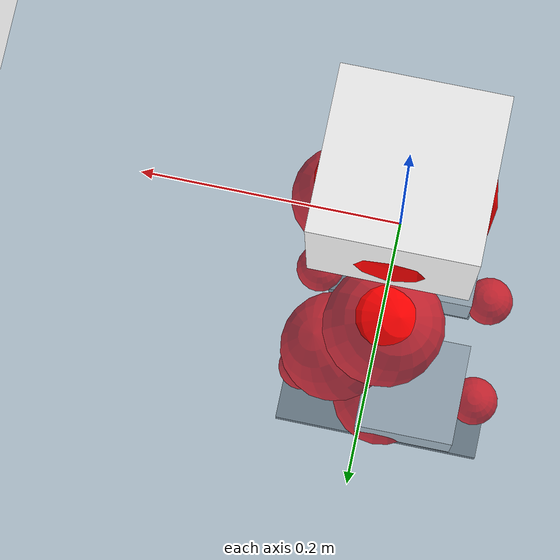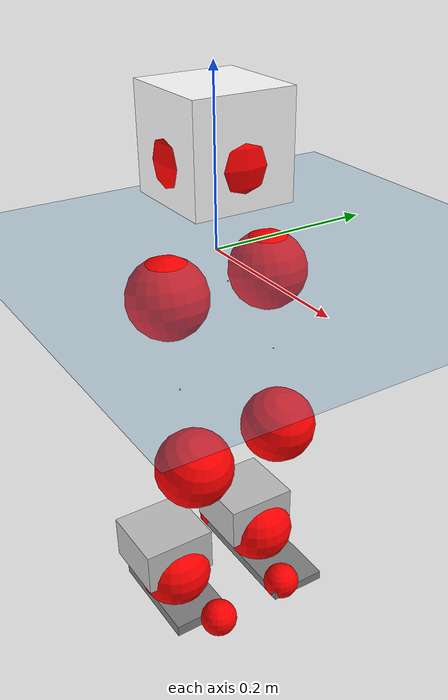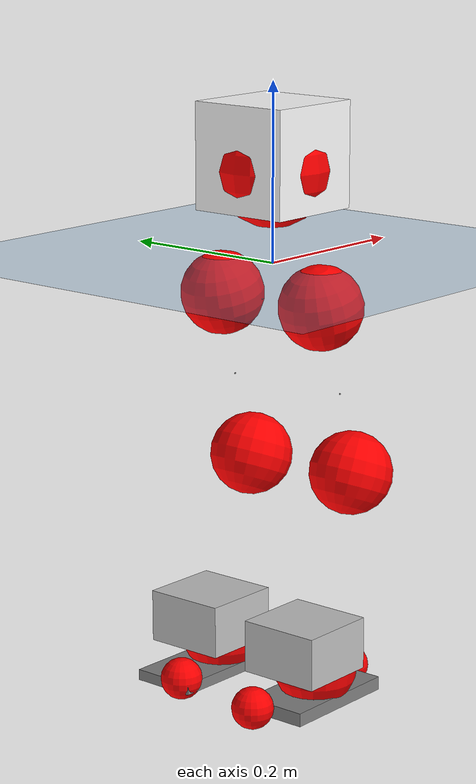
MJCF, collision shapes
<mujoco model="pi_12dof_release_v1">
  <compiler angle="radian" assetdir="assets" balanceinertia="true" inertiafromgeom="false"/>

  <option timestep="0.005" density="1.2" viscosity="2e-05"/>

  <size nkey="1"/>

  <visual>
    <quality shadowsize="8192"/>
    <map shadowclip="0.5"/>
  </visual>

  <default>
    <default class="/">
      <joint armature="0.01" damping="0.01" frictionloss="0.01"/>
      <geom contype="0" conaffinity="0" group="1" solref="-1000 -80"/>
      <site size="0.01 0.005 0.005" group="5"/>
      <general forcelimited="true" biastype="affine" gainprm="20" biasprm="0 -20 -0.5"/>
      <default class="foot">
        <geom size="0.0845 0.036 0.005" type="box" condim="6" group="4" priority="1" friction="0.9 0.2 0.2" solimp="0.015 1 0.005"/>
      </default>
      <default class="reward_collision_sphere">
        <geom group="5" rgba="1 0 0 1"/>
      </default>
    </default>
  </default>

  <asset>
    <texture type="skybox" colorspace="auto" name="//unnamed_texture_0" builtin="gradient" rgb1="0.95 0.95 0.95" rgb2="0.95 0.95 0.95" width="100" height="600"/>
    <texture type="2d" colorspace="auto" name="texplane" builtin="checker" rgb1="0.345 0.575 0.748" rgb2="0.345 0.575 0.748" markrgb="1 1 1" width="512" height="512"/>
    <material name="MatPlane" class="/" texture="texplane" texuniform="true" texrepeat="2 2" specular="0.9"/>
    <mesh name="baselink_1" class="/" file="baselink_1.STL"/>
    <mesh name="r_hip_pitch_link" class="/" file="r_hip_pitch_link.STL"/>
    <mesh name="r_hip_roll_link" class="/" file="r_hip_roll_link.STL"/>
    <mesh name="r_thigh_link" class="/" file="r_thigh_link.STL"/>
    <mesh name="r_calf_link" class="/" file="r_calf_link.STL"/>
    <mesh name="r_ankle_pitch_link" class="/" file="r_ankle_pitch_link.STL"/>
    <mesh name="r_ankle_roll_link" class="/" file="r_ankle_roll_link.STL"/>
    <mesh name="l_hip_pitch_link" class="/" file="l_hip_pitch_link.STL"/>
    <mesh name="l_hip_roll_link" class="/" file="l_hip_roll_link.STL"/>
    <mesh name="l_thigh_link" class="/" file="l_thigh_link.STL"/>
    <mesh name="l_calf_link" class="/" file="l_calf_link.STL"/>
    <mesh name="l_ankle_pitch_link" class="/" file="l_ankle_pitch_link.STL"/>
    <mesh name="l_ankle_roll_link" class="/" file="l_ankle_roll_link.STL"/>
  </asset>

  <worldbody>
    <geom name="floor" class="/" size="100 100 0.125" type="plane" group="0" material="MatPlane"/>
    <light name="toplight_shadow" class="/" pos="0 0 5" dir="0.0990148 0.0990148 -0.990148" type="directional" ambient="0.04 0.04 0.04" diffuse="0.55 0.55 0.55" specular="0.12 0.12 0.12"/>
    <light name="toplight_fill" class="/" pos="0 0 5" dir="0.0990148 0.0990148 -0.990148" type="directional" castshadow="false" ambient="0.04 0.04 0.04" diffuse="0.3 0.3 0.3" specular="0.08 0.08 0.08"/>
    <body name="trunk" pos="-0.000511329 0.000154841 0.00526729" quat="1 0.000219651 0.000161446 0.000863716">
      <inertial pos="0.00500035 -0.00898992 0.0512434" quat="0.695039 0.0100483 0.00895243 0.718846" mass="3.76972" diaginertia="0.0297582 0.00474315 0.0248617"/>
      <joint name="//unnamed_joint_0" type="free"/>
      <geom name="//unnamed_geom_1" class="/" type="mesh" density="0" rgba="1 1 1 1" mesh="baselink_1"/>
      <geom name="//unnamed_geom_2" class="/" size="0.0594028 0.0594028 0.0594028" pos="0 0 0.114202" type="box" rgba="1 1 1 1"/>
      <geom name="//unnamed_geom_3" class="reward_collision_sphere" size="0.0653431" pos="0 0 0.0999268"/>
      <site name="imu" class="/" pos="-0.0049412 0.0166438 -0.00661717" size="0.0118806"/>
      <camera name="track" class="/" pos="0 -1.74011 0" quat="0.707107 0.707107 0 0" mode="trackcom"/>
      <camera name="ego_camera" class="/" pos="0.094994 0 0.256955" quat="-0.5 -0.5 0.5 0.5"/>
      <body name="r_hip_pitch_link" pos="0.000179867 -0.0159152 -0.0456307" quat="0.992199 -1.54642e-05 -0.124665 1.95608e-05">
        <inertial pos="0.00851654 -0.0510988 0.00260653" quat="-0.0185913 0.708227 -0.0223699 0.705385" mass="0.623065" diaginertia="0.000354246 5.10156e-05 0.000472467"/>
        <joint name="r_hip_pitch_joint" class="/" pos="0 0 0" axis="-0.0419909 -0.998975 0.0169148" range="-1.77082 1.34628" armature="0.0139645" damping="0.0259696" frictionloss="0.0153361"/>
        <geom name="//unnamed_geom_4" class="/" type="mesh" density="0" rgba="0.75294 0.75294 0.75294 1" mesh="r_hip_pitch_link"/>
        <geom name="//unnamed_geom_5" class="/" size="0.000594028 0.000594028 0.000594028" type="box" rgba="0.75294 0.75294 0.75294 1"/>
        <body name="r_hip_roll_link" pos="0.00285995 -0.0499429 -0.00230943" quat="1 0.00012684 5.76244e-05 -6.16509e-05">
          <inertial pos="-0.00215323 -0.00254309 -0.0835176" quat="0.703519 -0.078812 -0.0741017 0.702395" mass="0.716824" diaginertia="0.00106582 0.000140455 0.00093759"/>
          <joint name="r_hip_roll_joint" class="/" pos="0 0 0" axis="-0.999558 -0.0126502 0.0269171" stiffness="0.0115633" range="-0.119428 0.460242" armature="0.011147" damping="0.0636748" frictionloss="0.00977357"/>
          <geom name="//unnamed_geom_6" class="/" type="mesh" density="0" rgba="0.75294 0.75294 0.75294 1" mesh="r_hip_roll_link"/>
          <geom name="//unnamed_geom_7" class="/" size="0.000594028 0.000594028 0.000594028" type="box" rgba="0.75294 0.75294 0.75294 1"/>
          <geom name="//unnamed_geom_8" class="reward_collision_sphere" size="0.0475223"/>
          <body name="r_thigh_link" pos="0.00210591 -0.00498806 -0.104962" quat="0.999991 0.00219396 -0.00311061 -0.00181663">
            <inertial pos="-0.00112907 0.000849709 -0.0697665" quat="0.737767 0.675051 -0.00246371 -0.000229093" mass="0.205529" diaginertia="0.000403814 4.90368e-05 0.000376548"/>
            <joint name="r_thigh_joint" class="/" pos="0 0 0" axis="-0.00193089 -0.00239759 -0.999995" range="-0.304135 0.698192" armature="0.00778186" damping="0.00277151" frictionloss="0.012751"/>
            <geom name="//unnamed_geom_9" class="/" type="mesh" density="0" rgba="0.75294 0.75294 0.75294 1" mesh="r_thigh_link"/>
            <geom name="//unnamed_geom_10" class="/" size="0.000594028 0.000594028 0.000594028" type="box" rgba="0.75294 0.75294 0.75294 1"/>
            <body name="r_calf_link" pos="-0.0012677 0.00138294 -0.0990297" quat="0.947497 -0.00236739 0.319749 0.00231743">
              <inertial pos="-0.00273754 0.000373934 -0.100704" quat="0.99998 -0.00384022 0.00421347 0.00284264" mass="1.49115" diaginertia="0.012322 0.00198357 0.00102279"/>
              <joint name="r_calf_joint" class="/" pos="0 0 0" axis="0.0489312 -0.998701 -0.0142169" range="-1.60991 0.645944" armature="0.0120501" damping="0.0128491" frictionloss="0.0120379"/>
              <geom name="//unnamed_geom_11" class="/" type="mesh" density="0" rgba="0.75294 0.75294 0.75294 1" mesh="r_calf_link"/>
              <geom name="//unnamed_geom_12" class="/" size="0.000594028 0.000594028 0.000594028" type="box" rgba="0.75294 0.75294 0.75294 1"/>
              <geom name="//unnamed_geom_13" class="reward_collision_sphere" size="0.0475223"/>
              <body name="r_ankle_pitch_link" pos="-0.00993551 -0.00345403 -0.19874" quat="0.980062 -0.00015928 -0.198694 0.000153016">
                <inertial pos="0.00708672 0.00166834 5.80226e-05" quat="0.00344552 0.709073 -0.00427209 0.705114" mass="0.266469" diaginertia="0.000968634 9.89992e-05 0.000626654"/>
                <joint name="r_ankle_pitch_joint" class="/" pos="0 0 0" axis="0.00964923 -0.999921 0.00806206" stiffness="0.0115401" range="-1.2091 0.459705" armature="0.0114807" damping="0" frictionloss="0.00763747"/>
                <geom name="//unnamed_geom_14" class="/" type="mesh" density="0" rgba="0.75294 0.75294 0.75294 1" mesh="r_ankle_pitch_link"/>
                <geom name="//unnamed_geom_15" class="/" size="0.0463342 0.0475223 0.0297014" type="box" rgba="0.75294 0.75294 0.75294 1"/>
                <body name="r_ankle_roll_link" pos="0.086446 0.00311244 -0.00335525" quat="1 -0.000395158 -3.2063e-05 6.37971e-05">
                  <inertial pos="-0.0286298 -0.000250828 -0.0302665" quat="0.5599 0.43207 0.433651 0.558367" mass="0.993814" diaginertia="0.00354166 0.000506939 0.00165605"/>
                  <joint name="r_ankle_roll_joint" class="/" pos="0 0 0" axis="-0.999952 0.00559924 0.00809942" range="-0.119506 0.130394" armature="0.0117213" damping="0.00484011" frictionloss="0.00592288"/>
                  <geom name="//unnamed_geom_16" class="/" type="mesh" density="0" rgba="0.75294 0.75294 0.75294 1" mesh="r_ankle_roll_link"/>
                  <geom name="//unnamed_geom_17" class="/" type="mesh" rgba="0.75294 0.75294 0.75294 1" mesh="r_ankle_roll_link"/>
                  <geom name="right_foot" class="foot" size="0.0712873 0.0370315 0.00766229" pos="-0.0645959 0 -0.0628112"/>
                  <geom name="//unnamed_geom_19" class="reward_collision_sphere" size="0.0475223" pos="-0.0633294 0 -0.0285505"/>
                  <geom name="//unnamed_geom_20" class="reward_collision_sphere" size="0.0237611" pos="0.0189988 0.0174011 -0.057101"/>
                  <geom name="//unnamed_geom_21" class="reward_collision_sphere" size="0.0237611" pos="-0.15199 0.0174011 -0.057101"/>
                  <site name="right_foot" class="foot" pos="-0.0645959 0 -0.0628112" size="0.0118806"/>
                </body>
              </body>
            </body>
          </body>
        </body>
      </body>
      <body name="l_hip_pitch_link" pos="-6.95116e-06 0.0145568 -0.0476776" quat="0.992215 0.000106311 -0.124531 0.000723325">
        <inertial pos="0.00376295 0.0544389 0.000782802" quat="0.0137997 0.695135 0.0261618 0.718271" mass="0.742529" diaginertia="0.000414809 4.95669e-05 0.000614844"/>
        <joint name="l_hip_pitch_joint" class="/" pos="0 0 0" axis="-0.00778916 0.999879 0.0134866" range="-1.37357 1.91746" armature="0.00934336" damping="0" frictionloss="0.0160004"/>
        <geom name="//unnamed_geom_22" class="/" type="mesh" density="0" rgba="0.75294 0.75294 0.75294 1" mesh="l_hip_pitch_link"/>
        <geom name="//unnamed_geom_23" class="/" size="0.000594028 0.000594028 0.000594028" type="box" rgba="0.75294 0.75294 0.75294 1"/>
        <body name="l_hip_roll_link" pos="-0.001818 0.0566947 0.000890665" quat="0.999999 0.0004454 -0.000917477 -0.00105184">
          <inertial pos="-0.00184046 0.00524878 -0.0874146" quat="0.699375 -0.0679089 -0.0792949 0.70709" mass="0.629185" diaginertia="0.000957209 0.000128753 0.000657263"/>
          <joint name="l_hip_roll_joint" class="/" pos="0 0 0" axis="-0.999938 -0.00428151 0.0102581" stiffness="0.00444547" range="-0.706471 0.289544" armature="0.0116629" damping="0" frictionloss="0.0129183"/>
          <geom name="//unnamed_geom_24" class="/" type="mesh" density="0" rgba="0.75294 0.75294 0.75294 1" mesh="l_hip_roll_link"/>
          <geom name="//unnamed_geom_25" class="/" size="0.000594028 0.000594028 0.000594028" type="box" rgba="0.75294 0.75294 0.75294 1"/>
          <geom name="//unnamed_geom_26" class="reward_collision_sphere" size="0.0475223"/>
          <body name="l_thigh_link" pos="-0.00602285 -0.00246682 -0.0984915" quat="0.999994 -0.000962468 0.0026594 -0.00186394">
            <inertial pos="-0.00615008 -0.000272186 -0.0628984" quat="0.674831 0.737971 -8.92588e-06 -0.00137496" mass="0.178918" diaginertia="0.00035417 3.65385e-05 0.000255998"/>
            <joint name="l_thigh_joint" class="/" pos="0 0 0" axis="0.000110942 0.000115624 -1" stiffness="0.00532101" range="-0.603566 0.439427" armature="0.0132248" damping="0" frictionloss="0.0150299"/>
            <geom name="//unnamed_geom_27" class="/" type="mesh" density="0" rgba="0.75294 0.75294 0.75294 1" mesh="l_thigh_link"/>
            <geom name="//unnamed_geom_28" class="/" size="0.000594028 0.000594028 0.000594028" type="box" rgba="0.75294 0.75294 0.75294 1"/>
            <body name="l_calf_link" pos="-0.0031843 -0.00605549 -0.099886" quat="0.948119 -0.00267203 0.317896 0.0020986">
              <inertial pos="0.000998149 0.000551862 -0.097294" quat="0.998549 -0.015984 0.0284783 0.0428228" mass="1.44382" diaginertia="0.0114992 0.00190679 0.00110008"/>
              <joint name="l_calf_joint" class="/" pos="0 0 0" axis="0.0129614 0.999909 -0.00375562" range="-0.642474 1.70381" armature="0.0109185" damping="0.00915981" frictionloss="0.0144759"/>
              <geom name="//unnamed_geom_29" class="/" type="mesh" density="0" rgba="0.75294 0.75294 0.75294 1" mesh="l_calf_link"/>
              <geom name="//unnamed_geom_30" class="/" size="0.000594028 0.000594028 0.000594028" type="box" rgba="0.75294 0.75294 0.75294 1"/>
              <geom name="//unnamed_geom_31" class="reward_collision_sphere" size="0.0475223"/>
              <body name="l_ankle_pitch_link" pos="-0.000429734 -0.00124647 -0.190494" quat="0.980007 -0.000163471 -0.19896 0.000777637">
                <inertial pos="0.00598458 -0.0112752 -0.00349599" quat="-0.00309253 0.722255 -0.0201995 0.691324" mass="0.332917" diaginertia="0.00110762 0.000122494 0.000785836"/>
                <joint name="l_ankle_pitch_joint" class="/" pos="0 0 0" axis="-0.0084905 0.99905 0.0427495" range="-0.544676 1.33241" armature="0.0127951" damping="0.0397841" frictionloss="0.0116506"/>
                <geom name="//unnamed_geom_32" class="/" type="mesh" density="0" rgba="0.75294 0.75294 0.75294 1" mesh="l_ankle_pitch_link"/>
                <geom name="//unnamed_geom_33" class="/" size="0.0463342 0.0475223 0.0297014" type="box" rgba="0.75294 0.75294 0.75294 1"/>
                <body name="l_ankle_roll_link" pos="0.0904058 0.00659803 -0.00134937" quat="0.999996 0.000760307 0.00101833 -0.0025003">
                  <inertial pos="-0.0327797 -0.00240038 -0.0209137" quat="0.575813 0.392051 0.425486 0.577665" mass="0.992141" diaginertia="0.00386022 0.000535602 0.00150801"/>
                  <joint name="l_ankle_roll_joint" class="/" pos="0 0 0" axis="-0.998626 0.0356523 0.0383963" stiffness="0.00807065" range="-0.158767 0.369546" armature="0.0119634" damping="0.016197" frictionloss="0.0180204"/>
                  <geom name="//unnamed_geom_34" class="/" type="mesh" density="0" rgba="0.75294 0.75294 0.75294 1" mesh="l_ankle_roll_link"/>
                  <geom name="//unnamed_geom_35" class="/" type="mesh" rgba="0.75294 0.75294 0.75294 1" mesh="l_ankle_roll_link"/>
                  <geom name="left_foot" class="foot" size="0.0992515 0.0374559 0.00620954" pos="-0.0645959 0 -0.0628112"/>
                  <geom name="//unnamed_geom_37" class="reward_collision_sphere" size="0.0475223" pos="-0.0633294 0 -0.0285505"/>
                  <geom name="//unnamed_geom_38" class="reward_collision_sphere" size="0.0237611" pos="0.0189988 -0.0174011 -0.057101"/>
                  <geom name="//unnamed_geom_39" class="reward_collision_sphere" size="0.0237611" pos="-0.15199 -0.0174011 -0.057101"/>
                  <site name="left_foot" class="foot" pos="-0.0645959 0 -0.0628112" size="0.0118806"/>
                </body>
              </body>
            </body>
          </body>
        </body>
      </body>
    </body>
  </worldbody>

  <contact>
    <pair class="/" geom1="floor" geom2="right_foot" name="//unnamed_contact_1"/>
    <pair class="/" geom1="floor" geom2="left_foot" name="//unnamed_contact_0"/>
  </contact>

  <actuator>
    <general name="r_hip_pitch_joint" class="/" joint="r_hip_pitch_joint" forcerange="-29.9538 29.9538" gainprm="24.8147" biasprm="0 -24.8147 -0.608275"/>
    <general name="r_hip_roll_joint" class="/" joint="r_hip_roll_joint" forcerange="-24.7089 24.7089" gainprm="24.8147" biasprm="0 -24.8147 -0.608275"/>
    <general name="r_thigh_joint" class="/" joint="r_thigh_joint" forcerange="-28.8066 28.8066" gainprm="24.8147" biasprm="0 -24.8147 -0.608275"/>
    <general name="r_calf_joint" class="/" joint="r_calf_joint" forcerange="-24.0835 24.0835" gainprm="24.8147" biasprm="0 -24.8147 -0.608275"/>
    <general name="r_ankle_pitch_joint" class="/" joint="r_ankle_pitch_joint" forcerange="-20.8225 20.8225" gainprm="24.8147" biasprm="0 -24.8147 -0.608275"/>
    <general name="r_ankle_roll_joint" class="/" joint="r_ankle_roll_joint" forcerange="-17.2924 17.2924" gainprm="24.8147" biasprm="0 -24.8147 -0.608275"/>
    <general name="l_hip_pitch_joint" class="/" joint="l_hip_pitch_joint" forcerange="-28.1662 28.1662" gainprm="24.8147" biasprm="0 -24.8147 -0.608275"/>
    <general name="l_hip_roll_joint" class="/" joint="l_hip_roll_joint" forcerange="-34.517 34.517" gainprm="24.8147" biasprm="0 -24.8147 -0.608275"/>
    <general name="l_thigh_joint" class="/" joint="l_thigh_joint" forcerange="-25.0349 25.0349" gainprm="24.8147" biasprm="0 -24.8147 -0.608275"/>
    <general name="l_calf_joint" class="/" joint="l_calf_joint" forcerange="-25.3761 25.3761" gainprm="24.8147" biasprm="0 -24.8147 -0.608275"/>
    <general name="l_ankle_pitch_joint" class="/" joint="l_ankle_pitch_joint" forcerange="-23.9764 23.9764" gainprm="24.8147" biasprm="0 -24.8147 -0.608275"/>
    <general name="l_ankle_roll_joint" class="/" joint="l_ankle_roll_joint" forcerange="-27.1707 27.1707" gainprm="24.8147" biasprm="0 -24.8147 -0.608275"/>
  </actuator>

  <sensor>
    <gyro site="imu" name="imu_angular_velocity"/>
    <velocimeter site="imu" name="imu_linear_velocity"/>
    <framelinvel objtype="site" objname="left_foot" name="left_foot_global_linear_velocity"/>
    <framelinvel objtype="site" objname="right_foot" name="right_foot_global_linear_velocity"/>
  </sensor>

  <keyframe>
    <key name="home" qpos="0 0 0.291 1 0 0 0 0.4 0 0 -0.8 0.4 0 -0.4 0 0 0.8 -0.4 0"/>
  </keyframe>
</mujoco>
